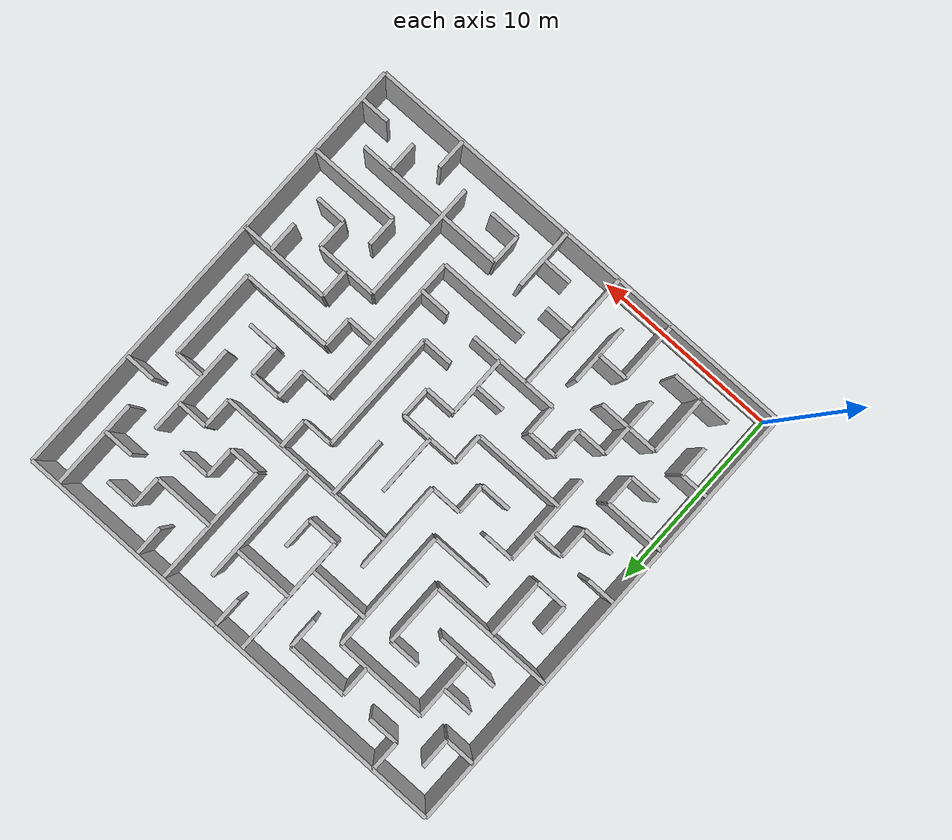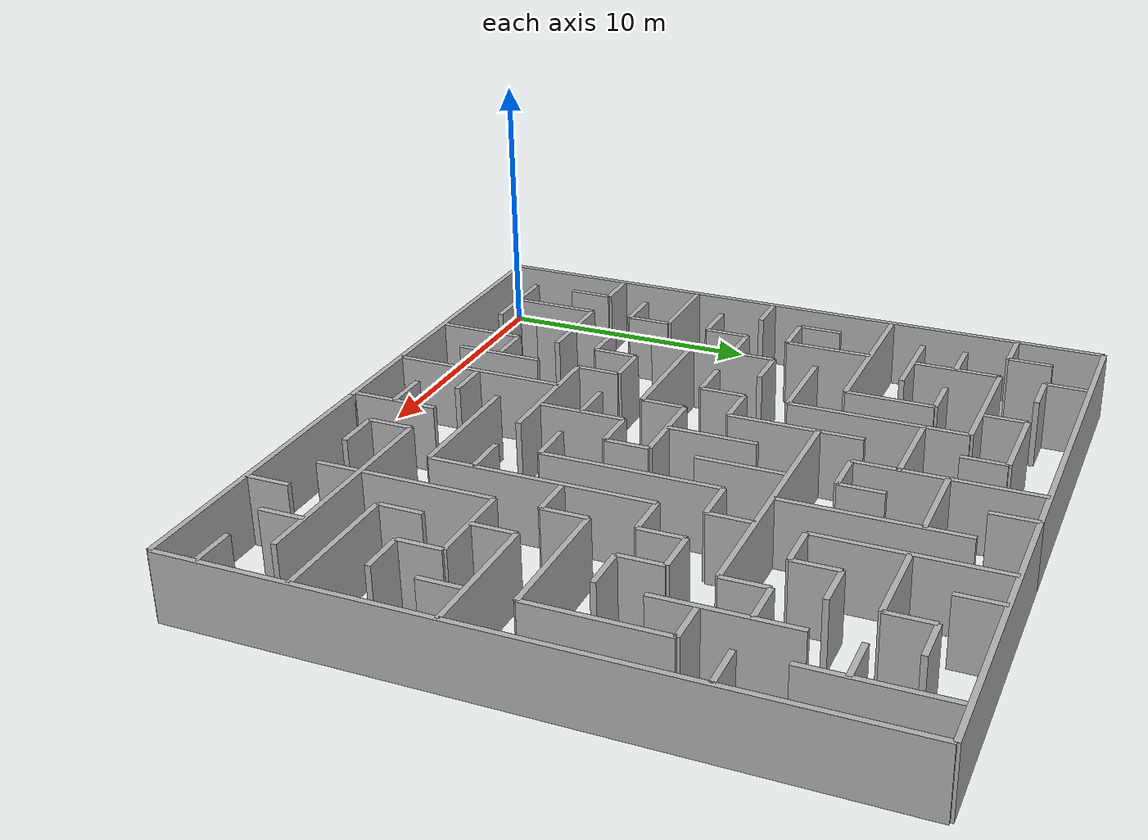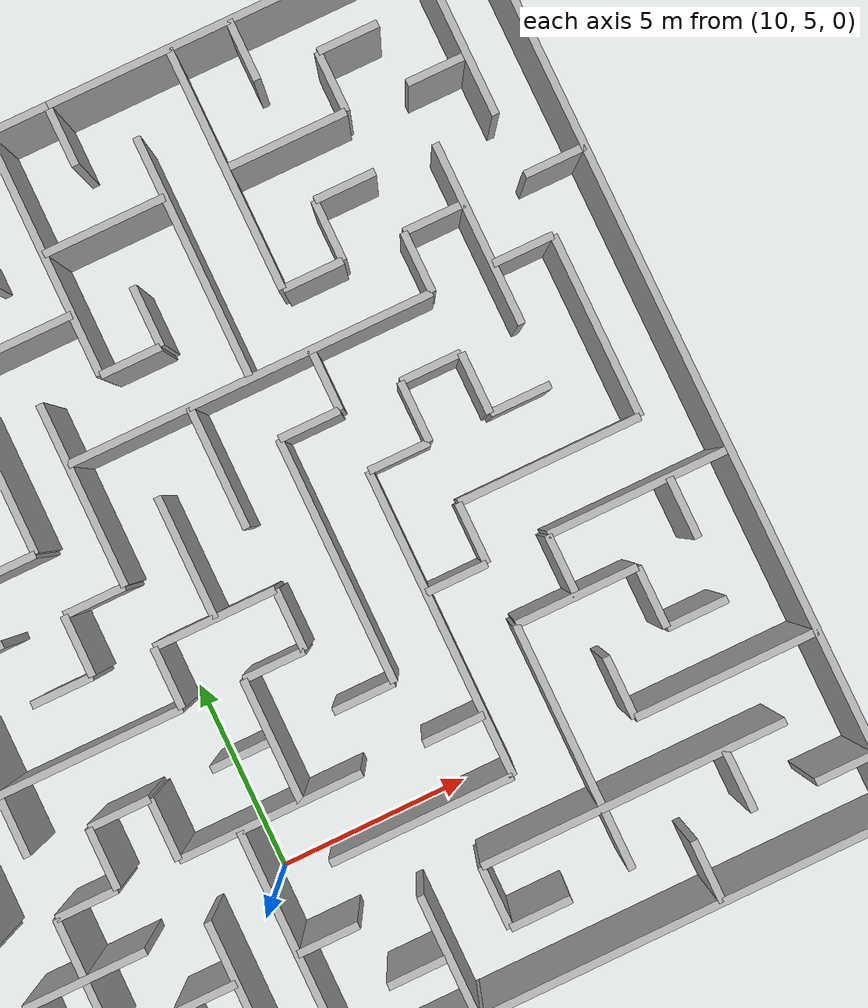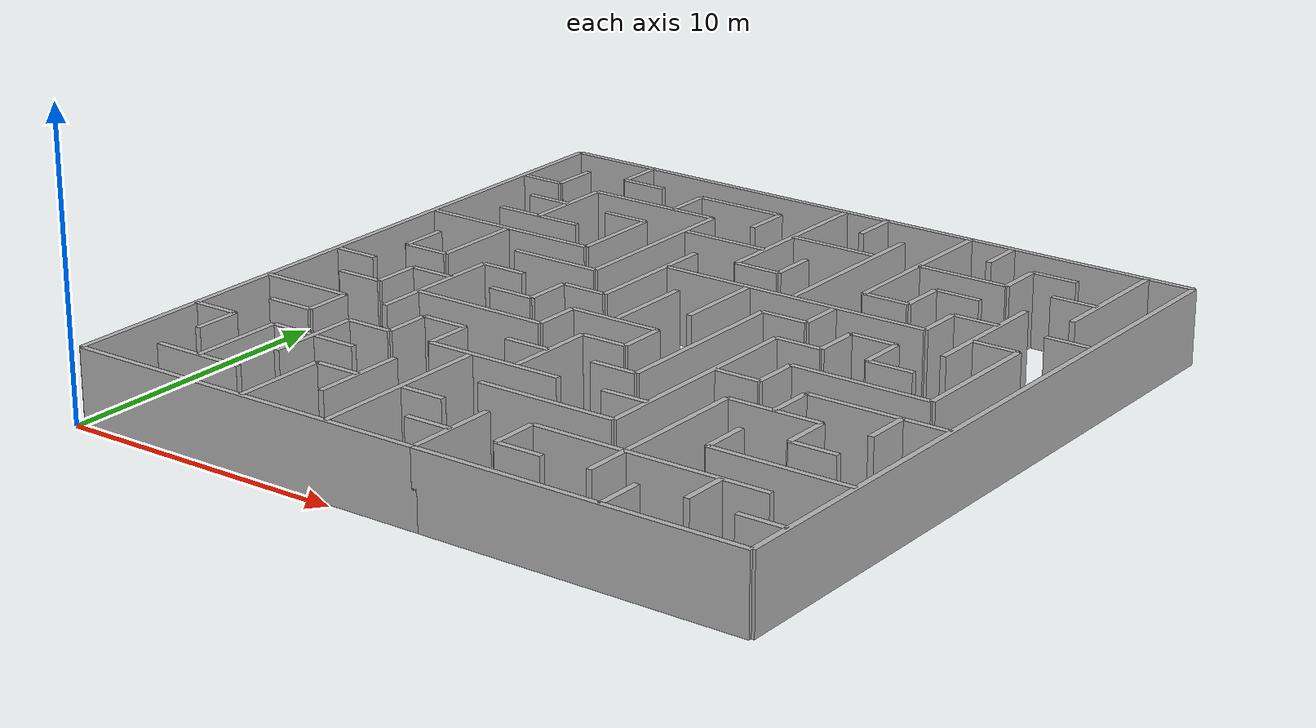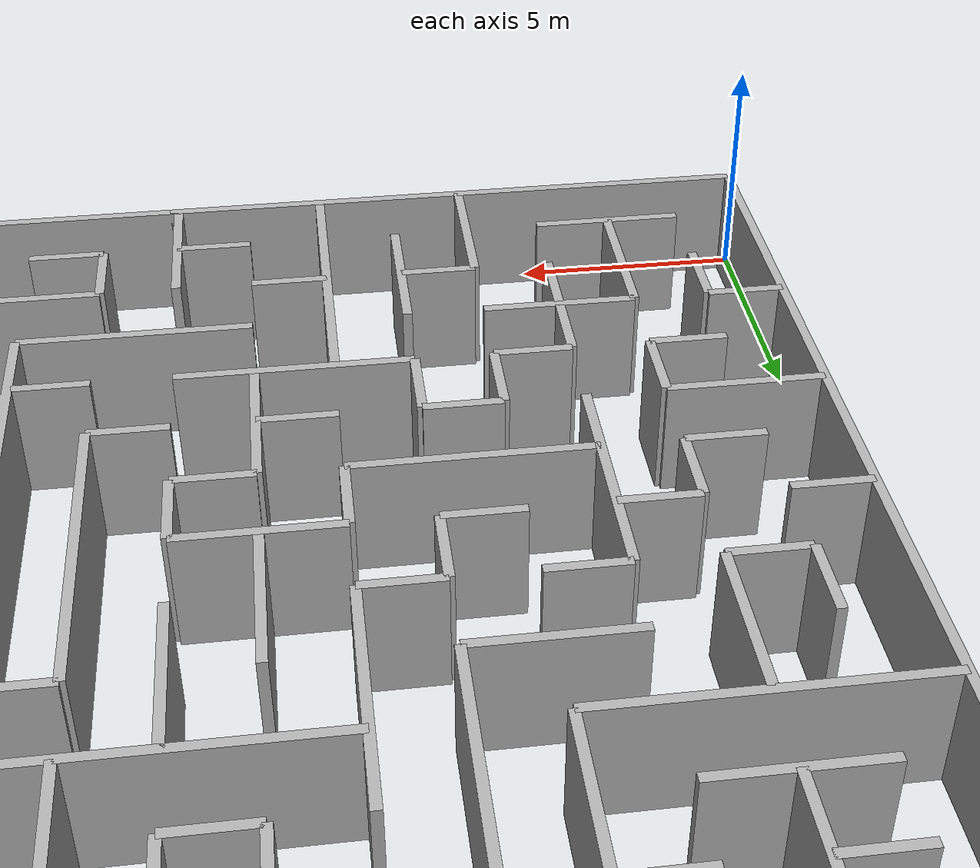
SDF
<?xml version="1.0" ?>
<sdf version="1.6">
  <model name="maze7_lines">
    <static>true</static>
    <link name="wall_0">
      <pose>6.703184675 0.2 1.25 0 0 0.0</pose>
      <collision name="collision">
        <geometry>
          <box><size>12.97467865 0.2 2.5</size></box>
        </geometry>
      </collision>
      <visual name="visual">
        <geometry>
          <box><size>12.97467865 0.2 2.5</size></box>
        </geometry>
        <material>
          <ambient>0.7 0.7 0.7 1</ambient>
          <diffuse>0.7 0.7 0.7 1</diffuse>
        </material>
      </visual>
    </link>
    <link name="wall_1">
      <pose>18.6 0.2 1.25 0 0 0.0</pose>
      <collision name="collision">
        <geometry>
          <box><size>11.200000000000003 0.2 2.5</size></box>
        </geometry>
      </collision>
      <visual name="visual">
        <geometry>
          <box><size>11.200000000000003 0.2 2.5</size></box>
        </geometry>
        <material>
          <ambient>0.7 0.7 0.7 1</ambient>
          <diffuse>0.7 0.7 0.7 1</diffuse>
        </material>
      </visual>
    </link>
    <link name="wall_2">
      <pose>3.4 1.8 1.25 0 0 0.0</pose>
      <collision name="collision">
        <geometry>
          <box><size>3.2 0.2 2.5</size></box>
        </geometry>
      </collision>
      <visual name="visual">
        <geometry>
          <box><size>3.2 0.2 2.5</size></box>
        </geometry>
        <material>
          <ambient>0.7 0.7 0.7 1</ambient>
          <diffuse>0.7 0.7 0.7 1</diffuse>
        </material>
      </visual>
    </link>
    <link name="wall_3">
      <pose>12.2 1.8 1.25 0 0 0.0</pose>
      <collision name="collision">
        <geometry>
          <box><size>1.5999999999999996 0.2 2.5</size></box>
        </geometry>
      </collision>
      <visual name="visual">
        <geometry>
          <box><size>1.5999999999999996 0.2 2.5</size></box>
        </geometry>
        <material>
          <ambient>0.7 0.7 0.7 1</ambient>
          <diffuse>0.7 0.7 0.7 1</diffuse>
        </material>
      </visual>
    </link>
    <link name="wall_4">
      <pose>15.4 1.8 1.25 0 0 0.0</pose>
      <collision name="collision">
        <geometry>
          <box><size>1.5999999999999979 0.2 2.5</size></box>
        </geometry>
      </collision>
      <visual name="visual">
        <geometry>
          <box><size>1.5999999999999979 0.2 2.5</size></box>
        </geometry>
        <material>
          <ambient>0.7 0.7 0.7 1</ambient>
          <diffuse>0.7 0.7 0.7 1</diffuse>
        </material>
      </visual>
    </link>
    <link name="wall_5">
      <pose>23.400000000000002 1.8 1.25 0 0 0.0</pose>
      <collision name="collision">
        <geometry>
          <box><size>1.6000000000000014 0.2 2.5</size></box>
        </geometry>
      </collision>
      <visual name="visual">
        <geometry>
          <box><size>1.6000000000000014 0.2 2.5</size></box>
        </geometry>
        <material>
          <ambient>0.7 0.7 0.7 1</ambient>
          <diffuse>0.7 0.7 0.7 1</diffuse>
        </material>
      </visual>
    </link>
    <link name="wall_6">
      <pose>7.4 3.4000000000000004 1.25 0 0 0.0</pose>
      <collision name="collision">
        <geometry>
          <box><size>1.6000000000000005 0.2 2.5</size></box>
        </geometry>
      </collision>
      <visual name="visual">
        <geometry>
          <box><size>1.6000000000000005 0.2 2.5</size></box>
        </geometry>
        <material>
          <ambient>0.7 0.7 0.7 1</ambient>
          <diffuse>0.7 0.7 0.7 1</diffuse>
        </material>
      </visual>
    </link>
    <link name="wall_7">
      <pose>10.600000000000001 3.4000000000000004 1.25 0 0 0.0</pose>
      <collision name="collision">
        <geometry>
          <box><size>1.5999999999999996 0.2 2.5</size></box>
        </geometry>
      </collision>
      <visual name="visual">
        <geometry>
          <box><size>1.5999999999999996 0.2 2.5</size></box>
        </geometry>
        <material>
          <ambient>0.7 0.7 0.7 1</ambient>
          <diffuse>0.7 0.7 0.7 1</diffuse>
        </material>
      </visual>
    </link>
    <link name="wall_8">
      <pose>18.6 3.4000000000000004 1.25 0 0 0.0</pose>
      <collision name="collision">
        <geometry>
          <box><size>8.0 0.2 2.5</size></box>
        </geometry>
      </collision>
      <visual name="visual">
        <geometry>
          <box><size>8.0 0.2 2.5</size></box>
        </geometry>
        <material>
          <ambient>0.7 0.7 0.7 1</ambient>
          <diffuse>0.7 0.7 0.7 1</diffuse>
        </material>
      </visual>
    </link>
    <link name="wall_9">
      <pose>1.0 5.0 1.25 0 0 0.0</pose>
      <collision name="collision">
        <geometry>
          <box><size>1.6 0.2 2.5</size></box>
        </geometry>
      </collision>
      <visual name="visual">
        <geometry>
          <box><size>1.6 0.2 2.5</size></box>
        </geometry>
        <material>
          <ambient>0.7 0.7 0.7 1</ambient>
          <diffuse>0.7 0.7 0.7 1</diffuse>
        </material>
      </visual>
    </link>
    <link name="wall_10">
      <pose>5.0 5.0 1.25 0 0 0.0</pose>
      <collision name="collision">
        <geometry>
          <box><size>3.2 0.2 2.5</size></box>
        </geometry>
      </collision>
      <visual name="visual">
        <geometry>
          <box><size>3.2 0.2 2.5</size></box>
        </geometry>
        <material>
          <ambient>0.7 0.7 0.7 1</ambient>
          <diffuse>0.7 0.7 0.7 1</diffuse>
        </material>
      </visual>
    </link>
    <link name="wall_11">
      <pose>13.8 5.0 1.25 0 0 0.0</pose>
      <collision name="collision">
        <geometry>
          <box><size>4.799999999999999 0.2 2.5</size></box>
        </geometry>
      </collision>
      <visual name="visual">
        <geometry>
          <box><size>4.799999999999999 0.2 2.5</size></box>
        </geometry>
        <material>
          <ambient>0.7 0.7 0.7 1</ambient>
          <diffuse>0.7 0.7 0.7 1</diffuse>
        </material>
      </visual>
    </link>
    <link name="wall_12">
      <pose>21.800000000000004 5.0 1.25 0 0 0.0</pose>
      <collision name="collision">
        <geometry>
          <box><size>4.800000000000001 0.2 2.5</size></box>
        </geometry>
      </collision>
      <visual name="visual">
        <geometry>
          <box><size>4.800000000000001 0.2 2.5</size></box>
        </geometry>
        <material>
          <ambient>0.7 0.7 0.7 1</ambient>
          <diffuse>0.7 0.7 0.7 1</diffuse>
        </material>
      </visual>
    </link>
    <link name="wall_13">
      <pose>2.6 6.6000000000000005 1.25 0 0 0.0</pose>
      <collision name="collision">
        <geometry>
          <box><size>1.6000000000000003 0.2 2.5</size></box>
        </geometry>
      </collision>
      <visual name="visual">
        <geometry>
          <box><size>1.6000000000000003 0.2 2.5</size></box>
        </geometry>
        <material>
          <ambient>0.7 0.7 0.7 1</ambient>
          <diffuse>0.7 0.7 0.7 1</diffuse>
        </material>
      </visual>
    </link>
    <link name="wall_14">
      <pose>5.800000000000001 6.6000000000000005 1.25 0 0 0.0</pose>
      <collision name="collision">
        <geometry>
          <box><size>1.6000000000000005 0.2 2.5</size></box>
        </geometry>
      </collision>
      <visual name="visual">
        <geometry>
          <box><size>1.6000000000000005 0.2 2.5</size></box>
        </geometry>
        <material>
          <ambient>0.7 0.7 0.7 1</ambient>
          <diffuse>0.7 0.7 0.7 1</diffuse>
        </material>
      </visual>
    </link>
    <link name="wall_15">
      <pose>10.600000000000001 6.6000000000000005 1.25 0 0 0.0</pose>
      <collision name="collision">
        <geometry>
          <box><size>4.799999999999999 0.2 2.5</size></box>
        </geometry>
      </collision>
      <visual name="visual">
        <geometry>
          <box><size>4.799999999999999 0.2 2.5</size></box>
        </geometry>
        <material>
          <ambient>0.7 0.7 0.7 1</ambient>
          <diffuse>0.7 0.7 0.7 1</diffuse>
        </material>
      </visual>
    </link>
    <link name="wall_16">
      <pose>15.4 6.6000000000000005 1.25 0 0 0.0</pose>
      <collision name="collision">
        <geometry>
          <box><size>1.5999999999999979 0.2 2.5</size></box>
        </geometry>
      </collision>
      <visual name="visual">
        <geometry>
          <box><size>1.5999999999999979 0.2 2.5</size></box>
        </geometry>
        <material>
          <ambient>0.7 0.7 0.7 1</ambient>
          <diffuse>0.7 0.7 0.7 1</diffuse>
        </material>
      </visual>
    </link>
    <link name="wall_17">
      <pose>21.8 6.6000000000000005 1.25 0 0 0.0</pose>
      <collision name="collision">
        <geometry>
          <box><size>1.6000000000000014 0.2 2.5</size></box>
        </geometry>
      </collision>
      <visual name="visual">
        <geometry>
          <box><size>1.6000000000000014 0.2 2.5</size></box>
        </geometry>
        <material>
          <ambient>0.7 0.7 0.7 1</ambient>
          <diffuse>0.7 0.7 0.7 1</diffuse>
        </material>
      </visual>
    </link>
    <link name="wall_18">
      <pose>1.8000000000000003 8.200000000000001 1.25 0 0 0.0</pose>
      <collision name="collision">
        <geometry>
          <box><size>3.2 0.2 2.5</size></box>
        </geometry>
      </collision>
      <visual name="visual">
        <geometry>
          <box><size>3.2 0.2 2.5</size></box>
        </geometry>
        <material>
          <ambient>0.7 0.7 0.7 1</ambient>
          <diffuse>0.7 0.7 0.7 1</diffuse>
        </material>
      </visual>
    </link>
    <link name="wall_19">
      <pose>7.4 8.200000000000001 1.25 0 0 0.0</pose>
      <collision name="collision">
        <geometry>
          <box><size>1.6000000000000005 0.2 2.5</size></box>
        </geometry>
      </collision>
      <visual name="visual">
        <geometry>
          <box><size>1.6000000000000005 0.2 2.5</size></box>
        </geometry>
        <material>
          <ambient>0.7 0.7 0.7 1</ambient>
          <diffuse>0.7 0.7 0.7 1</diffuse>
        </material>
      </visual>
    </link>
    <link name="wall_20">
      <pose>10.600000000000001 8.200000000000001 1.25 0 0 0.0</pose>
      <collision name="collision">
        <geometry>
          <box><size>1.5999999999999996 0.2 2.5</size></box>
        </geometry>
      </collision>
      <visual name="visual">
        <geometry>
          <box><size>1.5999999999999996 0.2 2.5</size></box>
        </geometry>
        <material>
          <ambient>0.7 0.7 0.7 1</ambient>
          <diffuse>0.7 0.7 0.7 1</diffuse>
        </material>
      </visual>
    </link>
    <link name="wall_21">
      <pose>13.8 8.200000000000001 1.25 0 0 0.0</pose>
      <collision name="collision">
        <geometry>
          <box><size>1.6000000000000014 0.2 2.5</size></box>
        </geometry>
      </collision>
      <visual name="visual">
        <geometry>
          <box><size>1.6000000000000014 0.2 2.5</size></box>
        </geometry>
        <material>
          <ambient>0.7 0.7 0.7 1</ambient>
          <diffuse>0.7 0.7 0.7 1</diffuse>
        </material>
      </visual>
    </link>
    <link name="wall_22">
      <pose>19.4 8.200000000000001 1.25 0 0 0.0</pose>
      <collision name="collision">
        <geometry>
          <box><size>3.1999999999999993 0.2 2.5</size></box>
        </geometry>
      </collision>
      <visual name="visual">
        <geometry>
          <box><size>3.1999999999999993 0.2 2.5</size></box>
        </geometry>
        <material>
          <ambient>0.7 0.7 0.7 1</ambient>
          <diffuse>0.7 0.7 0.7 1</diffuse>
        </material>
      </visual>
    </link>
    <link name="wall_23">
      <pose>2.6 9.8 1.25 0 0 0.0</pose>
      <collision name="collision">
        <geometry>
          <box><size>1.6000000000000003 0.2 2.5</size></box>
        </geometry>
      </collision>
      <visual name="visual">
        <geometry>
          <box><size>1.6000000000000003 0.2 2.5</size></box>
        </geometry>
        <material>
          <ambient>0.7 0.7 0.7 1</ambient>
          <diffuse>0.7 0.7 0.7 1</diffuse>
        </material>
      </visual>
    </link>
    <link name="wall_24">
      <pose>7.4 9.8 1.25 0 0 0.0</pose>
      <collision name="collision">
        <geometry>
          <box><size>4.800000000000001 0.2 2.5</size></box>
        </geometry>
      </collision>
      <visual name="visual">
        <geometry>
          <box><size>4.800000000000001 0.2 2.5</size></box>
        </geometry>
        <material>
          <ambient>0.7 0.7 0.7 1</ambient>
          <diffuse>0.7 0.7 0.7 1</diffuse>
        </material>
      </visual>
    </link>
    <link name="wall_25">
      <pose>12.2 9.8 1.25 0 0 0.0</pose>
      <collision name="collision">
        <geometry>
          <box><size>1.5999999999999996 0.2 2.5</size></box>
        </geometry>
      </collision>
      <visual name="visual">
        <geometry>
          <box><size>1.5999999999999996 0.2 2.5</size></box>
        </geometry>
        <material>
          <ambient>0.7 0.7 0.7 1</ambient>
          <diffuse>0.7 0.7 0.7 1</diffuse>
        </material>
      </visual>
    </link>
    <link name="wall_26">
      <pose>17.0 9.8 1.25 0 0 0.0</pose>
      <collision name="collision">
        <geometry>
          <box><size>1.6000000000000014 0.2 2.5</size></box>
        </geometry>
      </collision>
      <visual name="visual">
        <geometry>
          <box><size>1.6000000000000014 0.2 2.5</size></box>
        </geometry>
        <material>
          <ambient>0.7 0.7 0.7 1</ambient>
          <diffuse>0.7 0.7 0.7 1</diffuse>
        </material>
      </visual>
    </link>
    <link name="wall_27">
      <pose>21.800000000000004 9.8 1.25 0 0 0.0</pose>
      <collision name="collision">
        <geometry>
          <box><size>4.800000000000001 0.2 2.5</size></box>
        </geometry>
      </collision>
      <visual name="visual">
        <geometry>
          <box><size>4.800000000000001 0.2 2.5</size></box>
        </geometry>
        <material>
          <ambient>0.7 0.7 0.7 1</ambient>
          <diffuse>0.7 0.7 0.7 1</diffuse>
        </material>
      </visual>
    </link>
    <link name="wall_28">
      <pose>1.0 11.4 1.25 0 0 0.0</pose>
      <collision name="collision">
        <geometry>
          <box><size>1.6 0.2 2.5</size></box>
        </geometry>
      </collision>
      <visual name="visual">
        <geometry>
          <box><size>1.6 0.2 2.5</size></box>
        </geometry>
        <material>
          <ambient>0.7 0.7 0.7 1</ambient>
          <diffuse>0.7 0.7 0.7 1</diffuse>
        </material>
      </visual>
    </link>
    <link name="wall_29">
      <pose>4.2 11.4 1.25 0 0 0.0</pose>
      <collision name="collision">
        <geometry>
          <box><size>1.5999999999999996 0.2 2.5</size></box>
        </geometry>
      </collision>
      <visual name="visual">
        <geometry>
          <box><size>1.5999999999999996 0.2 2.5</size></box>
        </geometry>
        <material>
          <ambient>0.7 0.7 0.7 1</ambient>
          <diffuse>0.7 0.7 0.7 1</diffuse>
        </material>
      </visual>
    </link>
    <link name="wall_30">
      <pose>7.4 11.4 1.25 0 0 0.0</pose>
      <collision name="collision">
        <geometry>
          <box><size>1.6000000000000005 0.2 2.5</size></box>
        </geometry>
      </collision>
      <visual name="visual">
        <geometry>
          <box><size>1.6000000000000005 0.2 2.5</size></box>
        </geometry>
        <material>
          <ambient>0.7 0.7 0.7 1</ambient>
          <diffuse>0.7 0.7 0.7 1</diffuse>
        </material>
      </visual>
    </link>
    <link name="wall_31">
      <pose>11.4 11.4 1.25 0 0 0.0</pose>
      <collision name="collision">
        <geometry>
          <box><size>3.1999999999999993 0.2 2.5</size></box>
        </geometry>
      </collision>
      <visual name="visual">
        <geometry>
          <box><size>3.1999999999999993 0.2 2.5</size></box>
        </geometry>
        <material>
          <ambient>0.7 0.7 0.7 1</ambient>
          <diffuse>0.7 0.7 0.7 1</diffuse>
        </material>
      </visual>
    </link>
    <link name="wall_32">
      <pose>20.200000000000003 11.4 1.25 0 0 0.0</pose>
      <collision name="collision">
        <geometry>
          <box><size>4.800000000000001 0.2 2.5</size></box>
        </geometry>
      </collision>
      <visual name="visual">
        <geometry>
          <box><size>4.800000000000001 0.2 2.5</size></box>
        </geometry>
        <material>
          <ambient>0.7 0.7 0.7 1</ambient>
          <diffuse>0.7 0.7 0.7 1</diffuse>
        </material>
      </visual>
    </link>
    <link name="wall_33">
      <pose>2.6 13.0 1.25 0 0 0.0</pose>
      <collision name="collision">
        <geometry>
          <box><size>1.6000000000000003 0.2 2.5</size></box>
        </geometry>
      </collision>
      <visual name="visual">
        <geometry>
          <box><size>1.6000000000000003 0.2 2.5</size></box>
        </geometry>
        <material>
          <ambient>0.7 0.7 0.7 1</ambient>
          <diffuse>0.7 0.7 0.7 1</diffuse>
        </material>
      </visual>
    </link>
    <link name="wall_34">
      <pose>5.800000000000001 13.0 1.25 0 0 0.0</pose>
      <collision name="collision">
        <geometry>
          <box><size>1.6000000000000005 0.2 2.5</size></box>
        </geometry>
      </collision>
      <visual name="visual">
        <geometry>
          <box><size>1.6000000000000005 0.2 2.5</size></box>
        </geometry>
        <material>
          <ambient>0.7 0.7 0.7 1</ambient>
          <diffuse>0.7 0.7 0.7 1</diffuse>
        </material>
      </visual>
    </link>
    <link name="wall_35">
      <pose>9.0 13.0 1.25 0 0 0.0</pose>
      <collision name="collision">
        <geometry>
          <box><size>1.5999999999999996 0.2 2.5</size></box>
        </geometry>
      </collision>
      <visual name="visual">
        <geometry>
          <box><size>1.5999999999999996 0.2 2.5</size></box>
        </geometry>
        <material>
          <ambient>0.7 0.7 0.7 1</ambient>
          <diffuse>0.7 0.7 0.7 1</diffuse>
        </material>
      </visual>
    </link>
    <link name="wall_36">
      <pose>17.0 13.0 1.25 0 0 0.0</pose>
      <collision name="collision">
        <geometry>
          <box><size>1.6000000000000014 0.2 2.5</size></box>
        </geometry>
      </collision>
      <visual name="visual">
        <geometry>
          <box><size>1.6000000000000014 0.2 2.5</size></box>
        </geometry>
        <material>
          <ambient>0.7 0.7 0.7 1</ambient>
          <diffuse>0.7 0.7 0.7 1</diffuse>
        </material>
      </visual>
    </link>
    <link name="wall_37">
      <pose>20.200000000000003 13.0 1.25 0 0 0.0</pose>
      <collision name="collision">
        <geometry>
          <box><size>1.5999999999999979 0.2 2.5</size></box>
        </geometry>
      </collision>
      <visual name="visual">
        <geometry>
          <box><size>1.5999999999999979 0.2 2.5</size></box>
        </geometry>
        <material>
          <ambient>0.7 0.7 0.7 1</ambient>
          <diffuse>0.7 0.7 0.7 1</diffuse>
        </material>
      </visual>
    </link>
    <link name="wall_38">
      <pose>6.6000000000000005 14.600000000000001 1.25 0 0 0.0</pose>
      <collision name="collision">
        <geometry>
          <box><size>3.200000000000001 0.2 2.5</size></box>
        </geometry>
      </collision>
      <visual name="visual">
        <geometry>
          <box><size>3.200000000000001 0.2 2.5</size></box>
        </geometry>
        <material>
          <ambient>0.7 0.7 0.7 1</ambient>
          <diffuse>0.7 0.7 0.7 1</diffuse>
        </material>
      </visual>
    </link>
    <link name="wall_39">
      <pose>15.4 14.600000000000001 1.25 0 0 0.0</pose>
      <collision name="collision">
        <geometry>
          <box><size>1.5999999999999979 0.2 2.5</size></box>
        </geometry>
      </collision>
      <visual name="visual">
        <geometry>
          <box><size>1.5999999999999979 0.2 2.5</size></box>
        </geometry>
        <material>
          <ambient>0.7 0.7 0.7 1</ambient>
          <diffuse>0.7 0.7 0.7 1</diffuse>
        </material>
      </visual>
    </link>
    <link name="wall_40">
      <pose>18.6 14.600000000000001 1.25 0 0 0.0</pose>
      <collision name="collision">
        <geometry>
          <box><size>1.6000000000000014 0.2 2.5</size></box>
        </geometry>
      </collision>
      <visual name="visual">
        <geometry>
          <box><size>1.6000000000000014 0.2 2.5</size></box>
        </geometry>
        <material>
          <ambient>0.7 0.7 0.7 1</ambient>
          <diffuse>0.7 0.7 0.7 1</diffuse>
        </material>
      </visual>
    </link>
    <link name="wall_41">
      <pose>3.4000000000000004 16.2 1.25 0 0 0.0</pose>
      <collision name="collision">
        <geometry>
          <box><size>6.4 0.2 2.5</size></box>
        </geometry>
      </collision>
      <visual name="visual">
        <geometry>
          <box><size>6.4 0.2 2.5</size></box>
        </geometry>
        <material>
          <ambient>0.7 0.7 0.7 1</ambient>
          <diffuse>0.7 0.7 0.7 1</diffuse>
        </material>
      </visual>
    </link>
    <link name="wall_42">
      <pose>14.600000000000001 16.2 1.25 0 0 0.0</pose>
      <collision name="collision">
        <geometry>
          <box><size>9.600000000000001 0.2 2.5</size></box>
        </geometry>
      </collision>
      <visual name="visual">
        <geometry>
          <box><size>9.600000000000001 0.2 2.5</size></box>
        </geometry>
        <material>
          <ambient>0.7 0.7 0.7 1</ambient>
          <diffuse>0.7 0.7 0.7 1</diffuse>
        </material>
      </visual>
    </link>
    <link name="wall_43">
      <pose>21.8 16.2 1.25 0 0 0.0</pose>
      <collision name="collision">
        <geometry>
          <box><size>1.6000000000000014 0.2 2.5</size></box>
        </geometry>
      </collision>
      <visual name="visual">
        <geometry>
          <box><size>1.6000000000000014 0.2 2.5</size></box>
        </geometry>
        <material>
          <ambient>0.7 0.7 0.7 1</ambient>
          <diffuse>0.7 0.7 0.7 1</diffuse>
        </material>
      </visual>
    </link>
    <link name="wall_44">
      <pose>3.4 17.8 1.25 0 0 0.0</pose>
      <collision name="collision">
        <geometry>
          <box><size>3.2 0.2 2.5</size></box>
        </geometry>
      </collision>
      <visual name="visual">
        <geometry>
          <box><size>3.2 0.2 2.5</size></box>
        </geometry>
        <material>
          <ambient>0.7 0.7 0.7 1</ambient>
          <diffuse>0.7 0.7 0.7 1</diffuse>
        </material>
      </visual>
    </link>
    <link name="wall_45">
      <pose>12.2 17.8 1.25 0 0 0.0</pose>
      <collision name="collision">
        <geometry>
          <box><size>1.5999999999999996 0.2 2.5</size></box>
        </geometry>
      </collision>
      <visual name="visual">
        <geometry>
          <box><size>1.5999999999999996 0.2 2.5</size></box>
        </geometry>
        <material>
          <ambient>0.7 0.7 0.7 1</ambient>
          <diffuse>0.7 0.7 0.7 1</diffuse>
        </material>
      </visual>
    </link>
    <link name="wall_46">
      <pose>17.0 17.8 1.25 0 0 0.0</pose>
      <collision name="collision">
        <geometry>
          <box><size>1.6000000000000014 0.2 2.5</size></box>
        </geometry>
      </collision>
      <visual name="visual">
        <geometry>
          <box><size>1.6000000000000014 0.2 2.5</size></box>
        </geometry>
        <material>
          <ambient>0.7 0.7 0.7 1</ambient>
          <diffuse>0.7 0.7 0.7 1</diffuse>
        </material>
      </visual>
    </link>
    <link name="wall_47">
      <pose>20.200000000000003 17.8 1.25 0 0 0.0</pose>
      <collision name="collision">
        <geometry>
          <box><size>1.5999999999999979 0.2 2.5</size></box>
        </geometry>
      </collision>
      <visual name="visual">
        <geometry>
          <box><size>1.5999999999999979 0.2 2.5</size></box>
        </geometry>
        <material>
          <ambient>0.7 0.7 0.7 1</ambient>
          <diffuse>0.7 0.7 0.7 1</diffuse>
        </material>
      </visual>
    </link>
    <link name="wall_48">
      <pose>23.400000000000002 17.8 1.25 0 0 0.0</pose>
      <collision name="collision">
        <geometry>
          <box><size>1.6000000000000014 0.2 2.5</size></box>
        </geometry>
      </collision>
      <visual name="visual">
        <geometry>
          <box><size>1.6000000000000014 0.2 2.5</size></box>
        </geometry>
        <material>
          <ambient>0.7 0.7 0.7 1</ambient>
          <diffuse>0.7 0.7 0.7 1</diffuse>
        </material>
      </visual>
    </link>
    <link name="wall_49">
      <pose>2.6 19.400000000000002 1.25 0 0 0.0</pose>
      <collision name="collision">
        <geometry>
          <box><size>1.6000000000000003 0.2 2.5</size></box>
        </geometry>
      </collision>
      <visual name="visual">
        <geometry>
          <box><size>1.6000000000000003 0.2 2.5</size></box>
        </geometry>
        <material>
          <ambient>0.7 0.7 0.7 1</ambient>
          <diffuse>0.7 0.7 0.7 1</diffuse>
        </material>
      </visual>
    </link>
    <link name="wall_50">
      <pose>5.800000000000001 19.400000000000002 1.25 0 0 0.0</pose>
      <collision name="collision">
        <geometry>
          <box><size>1.6000000000000005 0.2 2.5</size></box>
        </geometry>
      </collision>
      <visual name="visual">
        <geometry>
          <box><size>1.6000000000000005 0.2 2.5</size></box>
        </geometry>
        <material>
          <ambient>0.7 0.7 0.7 1</ambient>
          <diffuse>0.7 0.7 0.7 1</diffuse>
        </material>
      </visual>
    </link>
    <link name="wall_51">
      <pose>9.8 19.400000000000002 1.25 0 0 0.0</pose>
      <collision name="collision">
        <geometry>
          <box><size>3.1999999999999993 0.2 2.5</size></box>
        </geometry>
      </collision>
      <visual name="visual">
        <geometry>
          <box><size>3.1999999999999993 0.2 2.5</size></box>
        </geometry>
        <material>
          <ambient>0.7 0.7 0.7 1</ambient>
          <diffuse>0.7 0.7 0.7 1</diffuse>
        </material>
      </visual>
    </link>
    <link name="wall_52">
      <pose>18.6 19.400000000000002 1.25 0 0 0.0</pose>
      <collision name="collision">
        <geometry>
          <box><size>1.6000000000000014 0.2 2.5</size></box>
        </geometry>
      </collision>
      <visual name="visual">
        <geometry>
          <box><size>1.6000000000000014 0.2 2.5</size></box>
        </geometry>
        <material>
          <ambient>0.7 0.7 0.7 1</ambient>
          <diffuse>0.7 0.7 0.7 1</diffuse>
        </material>
      </visual>
    </link>
    <link name="wall_53">
      <pose>1.0 21.0 1.25 0 0 0.0</pose>
      <collision name="collision">
        <geometry>
          <box><size>1.6 0.2 2.5</size></box>
        </geometry>
      </collision>
      <visual name="visual">
        <geometry>
          <box><size>1.6 0.2 2.5</size></box>
        </geometry>
        <material>
          <ambient>0.7 0.7 0.7 1</ambient>
          <diffuse>0.7 0.7 0.7 1</diffuse>
        </material>
      </visual>
    </link>
    <link name="wall_54">
      <pose>5.800000000000001 21.0 1.25 0 0 0.0</pose>
      <collision name="collision">
        <geometry>
          <box><size>4.800000000000001 0.2 2.5</size></box>
        </geometry>
      </collision>
      <visual name="visual">
        <geometry>
          <box><size>4.800000000000001 0.2 2.5</size></box>
        </geometry>
        <material>
          <ambient>0.7 0.7 0.7 1</ambient>
          <diffuse>0.7 0.7 0.7 1</diffuse>
        </material>
      </visual>
    </link>
    <link name="wall_55">
      <pose>13.0 21.0 1.25 0 0 0.0</pose>
      <collision name="collision">
        <geometry>
          <box><size>3.200000000000001 0.2 2.5</size></box>
        </geometry>
      </collision>
      <visual name="visual">
        <geometry>
          <box><size>3.200000000000001 0.2 2.5</size></box>
        </geometry>
        <material>
          <ambient>0.7 0.7 0.7 1</ambient>
          <diffuse>0.7 0.7 0.7 1</diffuse>
        </material>
      </visual>
    </link>
    <link name="wall_56">
      <pose>17.8 21.0 1.25 0 0 0.0</pose>
      <collision name="collision">
        <geometry>
          <box><size>3.200000000000003 0.2 2.5</size></box>
        </geometry>
      </collision>
      <visual name="visual">
        <geometry>
          <box><size>3.200000000000003 0.2 2.5</size></box>
        </geometry>
        <material>
          <ambient>0.7 0.7 0.7 1</ambient>
          <diffuse>0.7 0.7 0.7 1</diffuse>
        </material>
      </visual>
    </link>
    <link name="wall_57">
      <pose>21.8 21.0 1.25 0 0 0.0</pose>
      <collision name="collision">
        <geometry>
          <box><size>1.6000000000000014 0.2 2.5</size></box>
        </geometry>
      </collision>
      <visual name="visual">
        <geometry>
          <box><size>1.6000000000000014 0.2 2.5</size></box>
        </geometry>
        <material>
          <ambient>0.7 0.7 0.7 1</ambient>
          <diffuse>0.7 0.7 0.7 1</diffuse>
        </material>
      </visual>
    </link>
    <link name="wall_58">
      <pose>4.2 22.6 1.25 0 0 0.0</pose>
      <collision name="collision">
        <geometry>
          <box><size>1.5999999999999996 0.2 2.5</size></box>
        </geometry>
      </collision>
      <visual name="visual">
        <geometry>
          <box><size>1.5999999999999996 0.2 2.5</size></box>
        </geometry>
        <material>
          <ambient>0.7 0.7 0.7 1</ambient>
          <diffuse>0.7 0.7 0.7 1</diffuse>
        </material>
      </visual>
    </link>
    <link name="wall_59">
      <pose>8.200000000000001 22.6 1.25 0 0 0.0</pose>
      <collision name="collision">
        <geometry>
          <box><size>3.2 0.2 2.5</size></box>
        </geometry>
      </collision>
      <visual name="visual">
        <geometry>
          <box><size>3.2 0.2 2.5</size></box>
        </geometry>
        <material>
          <ambient>0.7 0.7 0.7 1</ambient>
          <diffuse>0.7 0.7 0.7 1</diffuse>
        </material>
      </visual>
    </link>
    <link name="wall_60">
      <pose>20.200000000000003 22.6 1.25 0 0 0.0</pose>
      <collision name="collision">
        <geometry>
          <box><size>1.5999999999999979 0.2 2.5</size></box>
        </geometry>
      </collision>
      <visual name="visual">
        <geometry>
          <box><size>1.5999999999999979 0.2 2.5</size></box>
        </geometry>
        <material>
          <ambient>0.7 0.7 0.7 1</ambient>
          <diffuse>0.7 0.7 0.7 1</diffuse>
        </material>
      </visual>
    </link>
    <link name="wall_61">
      <pose>6.6 24.200000000000003 1.25 0 0 0.0</pose>
      <collision name="collision">
        <geometry>
          <box><size>12.8 0.2 2.5</size></box>
        </geometry>
      </collision>
      <visual name="visual">
        <geometry>
          <box><size>12.8 0.2 2.5</size></box>
        </geometry>
        <material>
          <ambient>0.7 0.7 0.7 1</ambient>
          <diffuse>0.7 0.7 0.7 1</diffuse>
        </material>
      </visual>
    </link>
    <link name="wall_62">
      <pose>18.6 24.200000000000003 1.25 0 0 0.0</pose>
      <collision name="collision">
        <geometry>
          <box><size>11.200000000000003 0.2 2.5</size></box>
        </geometry>
      </collision>
      <visual name="visual">
        <geometry>
          <box><size>11.200000000000003 0.2 2.5</size></box>
        </geometry>
        <material>
          <ambient>0.7 0.7 0.7 1</ambient>
          <diffuse>0.7 0.7 0.7 1</diffuse>
        </material>
      </visual>
    </link>
    <link name="wall_63">
      <pose>0.2 12.200000000000001 1.25 0 0 1.5707963267948966</pose>
      <collision name="collision">
        <geometry>
          <box><size>24.000000000000004 0.2 2.5</size></box>
        </geometry>
      </collision>
      <visual name="visual">
        <geometry>
          <box><size>24.000000000000004 0.2 2.5</size></box>
        </geometry>
        <material>
          <ambient>0.7 0.7 0.7 1</ambient>
          <diffuse>0.7 0.7 0.7 1</diffuse>
        </material>
      </visual>
    </link>
    <link name="wall_64">
      <pose>1.8 4.2 1.25 0 0 1.5707963267948966</pose>
      <collision name="collision">
        <geometry>
          <box><size>1.5999999999999996 0.2 2.5</size></box>
        </geometry>
      </collision>
      <visual name="visual">
        <geometry>
          <box><size>1.5999999999999996 0.2 2.5</size></box>
        </geometry>
        <material>
          <ambient>0.7 0.7 0.7 1</ambient>
          <diffuse>0.7 0.7 0.7 1</diffuse>
        </material>
      </visual>
    </link>
    <link name="wall_65">
      <pose>1.8 13.8 1.25 0 0 1.5707963267948966</pose>
      <collision name="collision">
        <geometry>
          <box><size>1.6000000000000014 0.2 2.5</size></box>
        </geometry>
      </collision>
      <visual name="visual">
        <geometry>
          <box><size>1.6000000000000014 0.2 2.5</size></box>
        </geometry>
        <material>
          <ambient>0.7 0.7 0.7 1</ambient>
          <diffuse>0.7 0.7 0.7 1</diffuse>
        </material>
      </visual>
    </link>
    <link name="wall_66">
      <pose>1.8 21.8 1.25 0 0 1.5707963267948966</pose>
      <collision name="collision">
        <geometry>
          <box><size>1.6000000000000014 0.2 2.5</size></box>
        </geometry>
      </collision>
      <visual name="visual">
        <geometry>
          <box><size>1.6000000000000014 0.2 2.5</size></box>
        </geometry>
        <material>
          <ambient>0.7 0.7 0.7 1</ambient>
          <diffuse>0.7 0.7 0.7 1</diffuse>
        </material>
      </visual>
    </link>
    <link name="wall_67">
      <pose>3.4000000000000004 3.4 1.25 0 0 1.5707963267948966</pose>
      <collision name="collision">
        <geometry>
          <box><size>3.2 0.2 2.5</size></box>
        </geometry>
      </collision>
      <visual name="visual">
        <geometry>
          <box><size>3.2 0.2 2.5</size></box>
        </geometry>
        <material>
          <ambient>0.7 0.7 0.7 1</ambient>
          <diffuse>0.7 0.7 0.7 1</diffuse>
        </material>
      </visual>
    </link>
    <link name="wall_68">
      <pose>3.4000000000000004 7.4 1.25 0 0 1.5707963267948966</pose>
      <collision name="collision">
        <geometry>
          <box><size>1.6000000000000005 0.2 2.5</size></box>
        </geometry>
      </collision>
      <visual name="visual">
        <geometry>
          <box><size>1.6000000000000005 0.2 2.5</size></box>
        </geometry>
        <material>
          <ambient>0.7 0.7 0.7 1</ambient>
          <diffuse>0.7 0.7 0.7 1</diffuse>
        </material>
      </visual>
    </link>
    <link name="wall_69">
      <pose>3.4000000000000004 10.600000000000001 1.25 0 0 1.5707963267948966</pose>
      <collision name="collision">
        <geometry>
          <box><size>1.5999999999999996 0.2 2.5</size></box>
        </geometry>
      </collision>
      <visual name="visual">
        <geometry>
          <box><size>1.5999999999999996 0.2 2.5</size></box>
        </geometry>
        <material>
          <ambient>0.7 0.7 0.7 1</ambient>
          <diffuse>0.7 0.7 0.7 1</diffuse>
        </material>
      </visual>
    </link>
    <link name="wall_70">
      <pose>3.4000000000000004 14.6 1.25 0 0 1.5707963267948966</pose>
      <collision name="collision">
        <geometry>
          <box><size>3.1999999999999993 0.2 2.5</size></box>
        </geometry>
      </collision>
      <visual name="visual">
        <geometry>
          <box><size>3.1999999999999993 0.2 2.5</size></box>
        </geometry>
        <material>
          <ambient>0.7 0.7 0.7 1</ambient>
          <diffuse>0.7 0.7 0.7 1</diffuse>
        </material>
      </visual>
    </link>
    <link name="wall_71">
      <pose>3.4000000000000004 19.4 1.25 0 0 1.5707963267948966</pose>
      <collision name="collision">
        <geometry>
          <box><size>3.1999999999999993 0.2 2.5</size></box>
        </geometry>
      </collision>
      <visual name="visual">
        <geometry>
          <box><size>3.1999999999999993 0.2 2.5</size></box>
        </geometry>
        <material>
          <ambient>0.7 0.7 0.7 1</ambient>
          <diffuse>0.7 0.7 0.7 1</diffuse>
        </material>
      </visual>
    </link>
    <link name="wall_72">
      <pose>3.4000000000000004 23.400000000000002 1.25 0 0 1.5707963267948966</pose>
      <collision name="collision">
        <geometry>
          <box><size>1.6000000000000014 0.2 2.5</size></box>
        </geometry>
      </collision>
      <visual name="visual">
        <geometry>
          <box><size>1.6000000000000014 0.2 2.5</size></box>
        </geometry>
        <material>
          <ambient>0.7 0.7 0.7 1</ambient>
          <diffuse>0.7 0.7 0.7 1</diffuse>
        </material>
      </visual>
    </link>
    <link name="wall_73">
      <pose>5.0 5.0 1.25 0 0 1.5707963267948966</pose>
      <collision name="collision">
        <geometry>
          <box><size>3.2 0.2 2.5</size></box>
        </geometry>
      </collision>
      <visual name="visual">
        <geometry>
          <box><size>3.2 0.2 2.5</size></box>
        </geometry>
        <material>
          <ambient>0.7 0.7 0.7 1</ambient>
          <diffuse>0.7 0.7 0.7 1</diffuse>
        </material>
      </visual>
    </link>
    <link name="wall_74">
      <pose>5.0 10.600000000000001 1.25 0 0 1.5707963267948966</pose>
      <collision name="collision">
        <geometry>
          <box><size>4.799999999999999 0.2 2.5</size></box>
        </geometry>
      </collision>
      <visual name="visual">
        <geometry>
          <box><size>4.799999999999999 0.2 2.5</size></box>
        </geometry>
        <material>
          <ambient>0.7 0.7 0.7 1</ambient>
          <diffuse>0.7 0.7 0.7 1</diffuse>
        </material>
      </visual>
    </link>
    <link name="wall_75">
      <pose>6.6000000000000005 1.8000000000000003 1.25 0 0 1.5707963267948966</pose>
      <collision name="collision">
        <geometry>
          <box><size>3.2 0.2 2.5</size></box>
        </geometry>
      </collision>
      <visual name="visual">
        <geometry>
          <box><size>3.2 0.2 2.5</size></box>
        </geometry>
        <material>
          <ambient>0.7 0.7 0.7 1</ambient>
          <diffuse>0.7 0.7 0.7 1</diffuse>
        </material>
      </visual>
    </link>
    <link name="wall_76">
      <pose>6.6000000000000005 7.4 1.25 0 0 1.5707963267948966</pose>
      <collision name="collision">
        <geometry>
          <box><size>1.6000000000000005 0.2 2.5</size></box>
        </geometry>
      </collision>
      <visual name="visual">
        <geometry>
          <box><size>1.6000000000000005 0.2 2.5</size></box>
        </geometry>
        <material>
          <ambient>0.7 0.7 0.7 1</ambient>
          <diffuse>0.7 0.7 0.7 1</diffuse>
        </material>
      </visual>
    </link>
    <link name="wall_77">
      <pose>6.6000000000000005 17.8 1.25 0 0 1.5707963267948966</pose>
      <collision name="collision">
        <geometry>
          <box><size>3.200000000000003 0.2 2.5</size></box>
        </geometry>
      </collision>
      <visual name="visual">
        <geometry>
          <box><size>3.200000000000003 0.2 2.5</size></box>
        </geometry>
        <material>
          <ambient>0.7 0.7 0.7 1</ambient>
          <diffuse>0.7 0.7 0.7 1</diffuse>
        </material>
      </visual>
    </link>
    <link name="wall_78">
      <pose>6.6000000000000005 21.8 1.25 0 0 1.5707963267948966</pose>
      <collision name="collision">
        <geometry>
          <box><size>1.6000000000000014 0.2 2.5</size></box>
        </geometry>
      </collision>
      <visual name="visual">
        <geometry>
          <box><size>1.6000000000000014 0.2 2.5</size></box>
        </geometry>
        <material>
          <ambient>0.7 0.7 0.7 1</ambient>
          <diffuse>0.7 0.7 0.7 1</diffuse>
        </material>
      </visual>
    </link>
    <link name="wall_79">
      <pose>8.200000000000001 3.4 1.25 0 0 1.5707963267948966</pose>
      <collision name="collision">
        <geometry>
          <box><size>3.2 0.2 2.5</size></box>
        </geometry>
      </collision>
      <visual name="visual">
        <geometry>
          <box><size>3.2 0.2 2.5</size></box>
        </geometry>
        <material>
          <ambient>0.7 0.7 0.7 1</ambient>
          <diffuse>0.7 0.7 0.7 1</diffuse>
        </material>
      </visual>
    </link>
    <link name="wall_80">
      <pose>8.200000000000001 7.4 1.25 0 0 1.5707963267948966</pose>
      <collision name="collision">
        <geometry>
          <box><size>1.6000000000000005 0.2 2.5</size></box>
        </geometry>
      </collision>
      <visual name="visual">
        <geometry>
          <box><size>1.6000000000000005 0.2 2.5</size></box>
        </geometry>
        <material>
          <ambient>0.7 0.7 0.7 1</ambient>
          <diffuse>0.7 0.7 0.7 1</diffuse>
        </material>
      </visual>
    </link>
    <link name="wall_81">
      <pose>8.200000000000001 12.2 1.25 0 0 1.5707963267948966</pose>
      <collision name="collision">
        <geometry>
          <box><size>1.5999999999999996 0.2 2.5</size></box>
        </geometry>
      </collision>
      <visual name="visual">
        <geometry>
          <box><size>1.5999999999999996 0.2 2.5</size></box>
        </geometry>
        <material>
          <ambient>0.7 0.7 0.7 1</ambient>
          <diffuse>0.7 0.7 0.7 1</diffuse>
        </material>
      </visual>
    </link>
    <link name="wall_82">
      <pose>8.200000000000001 17.8 1.25 0 0 1.5707963267948966</pose>
      <collision name="collision">
        <geometry>
          <box><size>6.399999999999999 0.2 2.5</size></box>
        </geometry>
      </collision>
      <visual name="visual">
        <geometry>
          <box><size>6.399999999999999 0.2 2.5</size></box>
        </geometry>
        <material>
          <ambient>0.7 0.7 0.7 1</ambient>
          <diffuse>0.7 0.7 0.7 1</diffuse>
        </material>
      </visual>
    </link>
    <link name="wall_83">
      <pose>9.8 3.4000000000000004 1.25 0 0 1.5707963267948966</pose>
      <collision name="collision">
        <geometry>
          <box><size>6.4 0.2 2.5</size></box>
        </geometry>
      </collision>
      <visual name="visual">
        <geometry>
          <box><size>6.4 0.2 2.5</size></box>
        </geometry>
        <material>
          <ambient>0.7 0.7 0.7 1</ambient>
          <diffuse>0.7 0.7 0.7 1</diffuse>
        </material>
      </visual>
    </link>
    <link name="wall_84">
      <pose>9.8 10.600000000000001 1.25 0 0 1.5707963267948966</pose>
      <collision name="collision">
        <geometry>
          <box><size>1.5999999999999996 0.2 2.5</size></box>
        </geometry>
      </collision>
      <visual name="visual">
        <geometry>
          <box><size>1.5999999999999996 0.2 2.5</size></box>
        </geometry>
        <material>
          <ambient>0.7 0.7 0.7 1</ambient>
          <diffuse>0.7 0.7 0.7 1</diffuse>
        </material>
      </visual>
    </link>
    <link name="wall_85">
      <pose>9.8 15.4 1.25 0 0 1.5707963267948966</pose>
      <collision name="collision">
        <geometry>
          <box><size>4.800000000000001 0.2 2.5</size></box>
        </geometry>
      </collision>
      <visual name="visual">
        <geometry>
          <box><size>4.800000000000001 0.2 2.5</size></box>
        </geometry>
        <material>
          <ambient>0.7 0.7 0.7 1</ambient>
          <diffuse>0.7 0.7 0.7 1</diffuse>
        </material>
      </visual>
    </link>
    <link name="wall_86">
      <pose>9.8 21.8 1.25 0 0 1.5707963267948966</pose>
      <collision name="collision">
        <geometry>
          <box><size>1.6000000000000014 0.2 2.5</size></box>
        </geometry>
      </collision>
      <visual name="visual">
        <geometry>
          <box><size>1.6000000000000014 0.2 2.5</size></box>
        </geometry>
        <material>
          <ambient>0.7 0.7 0.7 1</ambient>
          <diffuse>0.7 0.7 0.7 1</diffuse>
        </material>
      </visual>
    </link>
    <link name="wall_87">
      <pose>11.4 8.200000000000001 1.25 0 0 1.5707963267948966</pose>
      <collision name="collision">
        <geometry>
          <box><size>3.2 0.2 2.5</size></box>
        </geometry>
      </collision>
      <visual name="visual">
        <geometry>
          <box><size>3.2 0.2 2.5</size></box>
        </geometry>
        <material>
          <ambient>0.7 0.7 0.7 1</ambient>
          <diffuse>0.7 0.7 0.7 1</diffuse>
        </material>
      </visual>
    </link>
    <link name="wall_88">
      <pose>11.4 13.0 1.25 0 0 1.5707963267948966</pose>
      <collision name="collision">
        <geometry>
          <box><size>3.200000000000001 0.2 2.5</size></box>
        </geometry>
      </collision>
      <visual name="visual">
        <geometry>
          <box><size>3.200000000000001 0.2 2.5</size></box>
        </geometry>
        <material>
          <ambient>0.7 0.7 0.7 1</ambient>
          <diffuse>0.7 0.7 0.7 1</diffuse>
        </material>
      </visual>
    </link>
    <link name="wall_89">
      <pose>11.4 21.0 1.25 0 0 1.5707963267948966</pose>
      <collision name="collision">
        <geometry>
          <box><size>6.400000000000002 0.2 2.5</size></box>
        </geometry>
      </collision>
      <visual name="visual">
        <geometry>
          <box><size>6.400000000000002 0.2 2.5</size></box>
        </geometry>
        <material>
          <ambient>0.7 0.7 0.7 1</ambient>
          <diffuse>0.7 0.7 0.7 1</diffuse>
        </material>
      </visual>
    </link>
    <link name="wall_90">
      <pose>13.0 1.8000000000000003 1.25 0 0 1.5707963267948966</pose>
      <collision name="collision">
        <geometry>
          <box><size>3.2 0.2 2.5</size></box>
        </geometry>
      </collision>
      <visual name="visual">
        <geometry>
          <box><size>3.2 0.2 2.5</size></box>
        </geometry>
        <material>
          <ambient>0.7 0.7 0.7 1</ambient>
          <diffuse>0.7 0.7 0.7 1</diffuse>
        </material>
      </visual>
    </link>
    <link name="wall_91">
      <pose>13.0 10.600000000000001 1.25 0 0 1.5707963267948966</pose>
      <collision name="collision">
        <geometry>
          <box><size>1.5999999999999996 0.2 2.5</size></box>
        </geometry>
      </collision>
      <visual name="visual">
        <geometry>
          <box><size>1.5999999999999996 0.2 2.5</size></box>
        </geometry>
        <material>
          <ambient>0.7 0.7 0.7 1</ambient>
          <diffuse>0.7 0.7 0.7 1</diffuse>
        </material>
      </visual>
    </link>
    <link name="wall_92">
      <pose>13.0 14.6 1.25 0 0 1.5707963267948966</pose>
      <collision name="collision">
        <geometry>
          <box><size>3.1999999999999993 0.2 2.5</size></box>
        </geometry>
      </collision>
      <visual name="visual">
        <geometry>
          <box><size>3.1999999999999993 0.2 2.5</size></box>
        </geometry>
        <material>
          <ambient>0.7 0.7 0.7 1</ambient>
          <diffuse>0.7 0.7 0.7 1</diffuse>
        </material>
      </visual>
    </link>
    <link name="wall_93">
      <pose>13.0 18.6 1.25 0 0 1.5707963267948966</pose>
      <collision name="collision">
        <geometry>
          <box><size>1.6000000000000014 0.2 2.5</size></box>
        </geometry>
      </collision>
      <visual name="visual">
        <geometry>
          <box><size>1.6000000000000014 0.2 2.5</size></box>
        </geometry>
        <material>
          <ambient>0.7 0.7 0.7 1</ambient>
          <diffuse>0.7 0.7 0.7 1</diffuse>
        </material>
      </visual>
    </link>
    <link name="wall_94">
      <pose>13.0 23.400000000000002 1.25 0 0 1.5707963267948966</pose>
      <collision name="collision">
        <geometry>
          <box><size>1.6000000000000014 0.2 2.5</size></box>
        </geometry>
      </collision>
      <visual name="visual">
        <geometry>
          <box><size>1.6000000000000014 0.2 2.5</size></box>
        </geometry>
        <material>
          <ambient>0.7 0.7 0.7 1</ambient>
          <diffuse>0.7 0.7 0.7 1</diffuse>
        </material>
      </visual>
    </link>
    <link name="wall_95">
      <pose>14.600000000000001 2.6 1.25 0 0 1.5707963267948966</pose>
      <collision name="collision">
        <geometry>
          <box><size>1.6000000000000003 0.2 2.5</size></box>
        </geometry>
      </collision>
      <visual name="visual">
        <geometry>
          <box><size>1.6000000000000003 0.2 2.5</size></box>
        </geometry>
        <material>
          <ambient>0.7 0.7 0.7 1</ambient>
          <diffuse>0.7 0.7 0.7 1</diffuse>
        </material>
      </visual>
    </link>
    <link name="wall_96">
      <pose>14.600000000000001 11.400000000000002 1.25 0 0 1.5707963267948966</pose>
      <collision name="collision">
        <geometry>
          <box><size>6.4 0.2 2.5</size></box>
        </geometry>
      </collision>
      <visual name="visual">
        <geometry>
          <box><size>6.4 0.2 2.5</size></box>
        </geometry>
        <material>
          <ambient>0.7 0.7 0.7 1</ambient>
          <diffuse>0.7 0.7 0.7 1</diffuse>
        </material>
      </visual>
    </link>
    <link name="wall_97">
      <pose>14.600000000000001 19.4 1.25 0 0 1.5707963267948966</pose>
      <collision name="collision">
        <geometry>
          <box><size>6.400000000000002 0.2 2.5</size></box>
        </geometry>
      </collision>
      <visual name="visual">
        <geometry>
          <box><size>6.400000000000002 0.2 2.5</size></box>
        </geometry>
        <material>
          <ambient>0.7 0.7 0.7 1</ambient>
          <diffuse>0.7 0.7 0.7 1</diffuse>
        </material>
      </visual>
    </link>
    <link name="wall_98">
      <pose>16.2 9.0 1.25 0 0 1.5707963267948966</pose>
      <collision name="collision">
        <geometry>
          <box><size>8.0 0.2 2.5</size></box>
        </geometry>
      </collision>
      <visual name="visual">
        <geometry>
          <box><size>8.0 0.2 2.5</size></box>
        </geometry>
        <material>
          <ambient>0.7 0.7 0.7 1</ambient>
          <diffuse>0.7 0.7 0.7 1</diffuse>
        </material>
      </visual>
    </link>
    <link name="wall_99">
      <pose>16.2 15.4 1.25 0 0 1.5707963267948966</pose>
      <collision name="collision">
        <geometry>
          <box><size>1.5999999999999979 0.2 2.5</size></box>
        </geometry>
      </collision>
      <visual name="visual">
        <geometry>
          <box><size>1.5999999999999979 0.2 2.5</size></box>
        </geometry>
        <material>
          <ambient>0.7 0.7 0.7 1</ambient>
          <diffuse>0.7 0.7 0.7 1</diffuse>
        </material>
      </visual>
    </link>
    <link name="wall_100">
      <pose>16.2 21.0 1.25 0 0 1.5707963267948966</pose>
      <collision name="collision">
        <geometry>
          <box><size>6.400000000000002 0.2 2.5</size></box>
        </geometry>
      </collision>
      <visual name="visual">
        <geometry>
          <box><size>6.400000000000002 0.2 2.5</size></box>
        </geometry>
        <material>
          <ambient>0.7 0.7 0.7 1</ambient>
          <diffuse>0.7 0.7 0.7 1</diffuse>
        </material>
      </visual>
    </link>
    <link name="wall_101">
      <pose>17.8 5.000000000000001 1.25 0 0 1.5707963267948966</pose>
      <collision name="collision">
        <geometry>
          <box><size>6.400000000000001 0.2 2.5</size></box>
        </geometry>
      </collision>
      <visual name="visual">
        <geometry>
          <box><size>6.400000000000001 0.2 2.5</size></box>
        </geometry>
        <material>
          <ambient>0.7 0.7 0.7 1</ambient>
          <diffuse>0.7 0.7 0.7 1</diffuse>
        </material>
      </visual>
    </link>
    <link name="wall_102">
      <pose>17.8 10.600000000000001 1.25 0 0 1.5707963267948966</pose>
      <collision name="collision">
        <geometry>
          <box><size>1.5999999999999996 0.2 2.5</size></box>
        </geometry>
      </collision>
      <visual name="visual">
        <geometry>
          <box><size>1.5999999999999996 0.2 2.5</size></box>
        </geometry>
        <material>
          <ambient>0.7 0.7 0.7 1</ambient>
          <diffuse>0.7 0.7 0.7 1</diffuse>
        </material>
      </visual>
    </link>
    <link name="wall_103">
      <pose>17.8 13.8 1.25 0 0 1.5707963267948966</pose>
      <collision name="collision">
        <geometry>
          <box><size>1.6000000000000014 0.2 2.5</size></box>
        </geometry>
      </collision>
      <visual name="visual">
        <geometry>
          <box><size>1.6000000000000014 0.2 2.5</size></box>
        </geometry>
        <material>
          <ambient>0.7 0.7 0.7 1</ambient>
          <diffuse>0.7 0.7 0.7 1</diffuse>
        </material>
      </visual>
    </link>
    <link name="wall_104">
      <pose>17.8 18.6 1.25 0 0 1.5707963267948966</pose>
      <collision name="collision">
        <geometry>
          <box><size>1.6000000000000014 0.2 2.5</size></box>
        </geometry>
      </collision>
      <visual name="visual">
        <geometry>
          <box><size>1.6000000000000014 0.2 2.5</size></box>
        </geometry>
        <material>
          <ambient>0.7 0.7 0.7 1</ambient>
          <diffuse>0.7 0.7 0.7 1</diffuse>
        </material>
      </visual>
    </link>
    <link name="wall_105">
      <pose>17.8 23.400000000000002 1.25 0 0 1.5707963267948966</pose>
      <collision name="collision">
        <geometry>
          <box><size>1.6000000000000014 0.2 2.5</size></box>
        </geometry>
      </collision>
      <visual name="visual">
        <geometry>
          <box><size>1.6000000000000014 0.2 2.5</size></box>
        </geometry>
        <material>
          <ambient>0.7 0.7 0.7 1</ambient>
          <diffuse>0.7 0.7 0.7 1</diffuse>
        </material>
      </visual>
    </link>
    <link name="wall_106">
      <pose>19.400000000000002 1.0 1.25 0 0 1.5707963267948966</pose>
      <collision name="collision">
        <geometry>
          <box><size>1.6 0.2 2.5</size></box>
        </geometry>
      </collision>
      <visual name="visual">
        <geometry>
          <box><size>1.6 0.2 2.5</size></box>
        </geometry>
        <material>
          <ambient>0.7 0.7 0.7 1</ambient>
          <diffuse>0.7 0.7 0.7 1</diffuse>
        </material>
      </visual>
    </link>
    <link name="wall_107">
      <pose>19.400000000000002 5.800000000000001 1.25 0 0 1.5707963267948966</pose>
      <collision name="collision">
        <geometry>
          <box><size>1.6000000000000005 0.2 2.5</size></box>
        </geometry>
      </collision>
      <visual name="visual">
        <geometry>
          <box><size>1.6000000000000005 0.2 2.5</size></box>
        </geometry>
        <material>
          <ambient>0.7 0.7 0.7 1</ambient>
          <diffuse>0.7 0.7 0.7 1</diffuse>
        </material>
      </visual>
    </link>
    <link name="wall_108">
      <pose>19.400000000000002 9.0 1.25 0 0 1.5707963267948966</pose>
      <collision name="collision">
        <geometry>
          <box><size>1.5999999999999996 0.2 2.5</size></box>
        </geometry>
      </collision>
      <visual name="visual">
        <geometry>
          <box><size>1.5999999999999996 0.2 2.5</size></box>
        </geometry>
        <material>
          <ambient>0.7 0.7 0.7 1</ambient>
          <diffuse>0.7 0.7 0.7 1</diffuse>
        </material>
      </visual>
    </link>
    <link name="wall_109">
      <pose>19.400000000000002 13.8 1.25 0 0 1.5707963267948966</pose>
      <collision name="collision">
        <geometry>
          <box><size>1.6000000000000014 0.2 2.5</size></box>
        </geometry>
      </collision>
      <visual name="visual">
        <geometry>
          <box><size>1.6000000000000014 0.2 2.5</size></box>
        </geometry>
        <material>
          <ambient>0.7 0.7 0.7 1</ambient>
          <diffuse>0.7 0.7 0.7 1</diffuse>
        </material>
      </visual>
    </link>
    <link name="wall_110">
      <pose>19.400000000000002 17.0 1.25 0 0 1.5707963267948966</pose>
      <collision name="collision">
        <geometry>
          <box><size>1.6000000000000014 0.2 2.5</size></box>
        </geometry>
      </collision>
      <visual name="visual">
        <geometry>
          <box><size>1.6000000000000014 0.2 2.5</size></box>
        </geometry>
        <material>
          <ambient>0.7 0.7 0.7 1</ambient>
          <diffuse>0.7 0.7 0.7 1</diffuse>
        </material>
      </visual>
    </link>
    <link name="wall_111">
      <pose>19.400000000000002 21.8 1.25 0 0 1.5707963267948966</pose>
      <collision name="collision">
        <geometry>
          <box><size>1.6000000000000014 0.2 2.5</size></box>
        </geometry>
      </collision>
      <visual name="visual">
        <geometry>
          <box><size>1.6000000000000014 0.2 2.5</size></box>
        </geometry>
        <material>
          <ambient>0.7 0.7 0.7 1</ambient>
          <diffuse>0.7 0.7 0.7 1</diffuse>
        </material>
      </visual>
    </link>
    <link name="wall_112">
      <pose>21.0 2.6 1.25 0 0 1.5707963267948966</pose>
      <collision name="collision">
        <geometry>
          <box><size>1.6000000000000003 0.2 2.5</size></box>
        </geometry>
      </collision>
      <visual name="visual">
        <geometry>
          <box><size>1.6000000000000003 0.2 2.5</size></box>
        </geometry>
        <material>
          <ambient>0.7 0.7 0.7 1</ambient>
          <diffuse>0.7 0.7 0.7 1</diffuse>
        </material>
      </visual>
    </link>
    <link name="wall_113">
      <pose>21.0 7.4 1.25 0 0 1.5707963267948966</pose>
      <collision name="collision">
        <geometry>
          <box><size>1.6000000000000005 0.2 2.5</size></box>
        </geometry>
      </collision>
      <visual name="visual">
        <geometry>
          <box><size>1.6000000000000005 0.2 2.5</size></box>
        </geometry>
        <material>
          <ambient>0.7 0.7 0.7 1</ambient>
          <diffuse>0.7 0.7 0.7 1</diffuse>
        </material>
      </visual>
    </link>
    <link name="wall_114">
      <pose>21.0 17.0 1.25 0 0 1.5707963267948966</pose>
      <collision name="collision">
        <geometry>
          <box><size>4.800000000000001 0.2 2.5</size></box>
        </geometry>
      </collision>
      <visual name="visual">
        <geometry>
          <box><size>4.800000000000001 0.2 2.5</size></box>
        </geometry>
        <material>
          <ambient>0.7 0.7 0.7 1</ambient>
          <diffuse>0.7 0.7 0.7 1</diffuse>
        </material>
      </visual>
    </link>
    <link name="wall_115">
      <pose>22.6 9.0 1.25 0 0 1.5707963267948966</pose>
      <collision name="collision">
        <geometry>
          <box><size>1.5999999999999996 0.2 2.5</size></box>
        </geometry>
      </collision>
      <visual name="visual">
        <geometry>
          <box><size>1.5999999999999996 0.2 2.5</size></box>
        </geometry>
        <material>
          <ambient>0.7 0.7 0.7 1</ambient>
          <diffuse>0.7 0.7 0.7 1</diffuse>
        </material>
      </visual>
    </link>
    <link name="wall_116">
      <pose>22.6 13.8 1.25 0 0 1.5707963267948966</pose>
      <collision name="collision">
        <geometry>
          <box><size>4.799999999999999 0.2 2.5</size></box>
        </geometry>
      </collision>
      <visual name="visual">
        <geometry>
          <box><size>4.799999999999999 0.2 2.5</size></box>
        </geometry>
        <material>
          <ambient>0.7 0.7 0.7 1</ambient>
          <diffuse>0.7 0.7 0.7 1</diffuse>
        </material>
      </visual>
    </link>
    <link name="wall_117">
      <pose>22.6 21.800000000000004 1.25 0 0 1.5707963267948966</pose>
      <collision name="collision">
        <geometry>
          <box><size>4.800000000000001 0.2 2.5</size></box>
        </geometry>
      </collision>
      <visual name="visual">
        <geometry>
          <box><size>4.800000000000001 0.2 2.5</size></box>
        </geometry>
        <material>
          <ambient>0.7 0.7 0.7 1</ambient>
          <diffuse>0.7 0.7 0.7 1</diffuse>
        </material>
      </visual>
    </link>
    <link name="wall_118">
      <pose>24.200000000000003 12.200000000000001 1.25 0 0 1.5707963267948966</pose>
      <collision name="collision">
        <geometry>
          <box><size>24.000000000000004 0.2 2.5</size></box>
        </geometry>
      </collision>
      <visual name="visual">
        <geometry>
          <box><size>24.000000000000004 0.2 2.5</size></box>
        </geometry>
        <material>
          <ambient>0.7 0.7 0.7 1</ambient>
          <diffuse>0.7 0.7 0.7 1</diffuse>
        </material>
      </visual>
    </link>
  </model>
</sdf>
